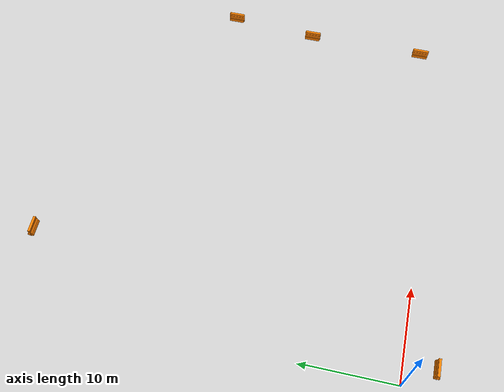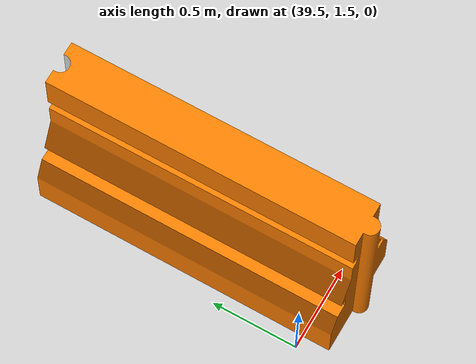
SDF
<sdf version="1.6">
 <world name="default">
  <light name="sun" type="directional">
   <pose>0 0 10 0 -0 0</pose>
   <diffuse>0.8 0.8 0.8 1</diffuse>
   <specular>0.1 0.1 0.1 1</specular>
   <attenuation>
    <range>1000</range>
    <constant>0.9</constant>
    <linear>0.01</linear>
    <quadratic>0.001</quadratic>
   </attenuation>
   <direction>-0.5 0.5 -1</direction>
  </light>
  <model name="ground_plane">
   <static>1</static>
   <link name="link">
    <collision name="collision">
     <geometry><plane><normal>0 0 1</normal><size>100 100</size></plane></geometry>
     <surface><friction><ode><mu>100</mu><mu2>50</mu2></ode></friction></surface>
    </collision>
    <visual name="visual">
     <cast_shadows>0</cast_shadows>
     <geometry><plane><normal>0 0 1</normal><size>100 100</size></plane></geometry>
     <material>
      <script><uri>file://media/materials/scripts/gazebo.material</uri><name>Gazebo/Grey</name></script>
     </material>
    </visual>
   </link>
  </model>
  <gravity>0 0 -9.8</gravity>
  <magnetic_field>6e-06 2.3e-05 -4.2e-05</magnetic_field>
  <atmosphere type="adiabatic"/>
  <physics name="default_physics" default="0" type="ode">
   <max_step_size>0.001</max_step_size>
   <real_time_factor>1</real_time_factor>
   <real_time_update_rate>1000</real_time_update_rate>
  </physics>
  <scene><ambient>0.4 0.4 0.4 1</ambient><background>0.7 0.7 0.7 1</background><shadows>1</shadows></scene>
  <spherical_coordinates>
   <surface_model>EARTH_WGS84</surface_model>
   <latitude_deg>0</latitude_deg>
   <longitude_deg>0</longitude_deg>
   <elevation>0</elevation>
   <heading_deg>0</heading_deg>
  </spherical_coordinates>
  <model name="drc_practice_organge_jersey_barrier">
   <static>1</static>
   <link name="link">
    <visual name="visual">
     <geometry>
      <mesh>
       <uri>model://drc_practice_orange_jersey_barrier/meshes/jersey_barrier.dae</uri>
       <scale>1 1 1</scale>
      </mesh>
     </geometry>
    </visual>
    <collision name="collision">
     <geometry>
      <mesh>
       <uri>model://drc_practice_orange_jersey_barrier/meshes/jersey_barrier.dae</uri>
       <scale>1 1 1</scale>
      </mesh>
     </geometry>
    </collision>
   </link>
   <pose>2.29845 -3.29603 0 0 0 -1.5708</pose>
  </model>
  <model name="drc_practice_organge_jersey_barrier_0">
   <static>1</static>
   <link name="link">
    <visual name="visual">
     <geometry>
      <mesh>
       <uri>model://drc_practice_orange_jersey_barrier/meshes/jersey_barrier.dae</uri>
       <scale>1 1 1</scale>
      </mesh>
     </geometry>
    </visual>
    <collision name="collision">
     <geometry>
      <mesh>
       <uri>model://drc_practice_orange_jersey_barrier/meshes/jersey_barrier.dae</uri>
       <scale>1 1 1</scale>
      </mesh>
     </geometry>
    </collision>
   </link>
   <pose>39.8792 2.22405 0 0 -0 0</pose>
  </model>
  <model name="drc_practice_organge_jersey_barrier_1">
   <static>1</static>
   <link name="link">
    <visual name="visual">
     <geometry>
      <mesh>
       <uri>model://drc_practice_orange_jersey_barrier/meshes/jersey_barrier.dae</uri>
       <scale>1 1 1</scale>
      </mesh>
     </geometry>
    </visual>
    <collision name="collision">
     <geometry>
      <mesh>
       <uri>model://drc_practice_orange_jersey_barrier/meshes/jersey_barrier.dae</uri>
       <scale>1 1 1</scale>
      </mesh>
     </geometry>
    </collision>
   </link>
   <pose>39.8253 15.3271 0 0 -0 0</pose>
  </model>
  <model name="drc_practice_organge_jersey_barrier_2">
   <static>1</static>
   <link name="link">
    <visual name="visual">
     <geometry>
      <mesh>
       <uri>model://drc_practice_orange_jersey_barrier/meshes/jersey_barrier.dae</uri>
       <scale>1 1 1</scale>
      </mesh>
     </geometry>
    </visual>
    <collision name="collision">
     <geometry>
      <mesh>
       <uri>model://drc_practice_orange_jersey_barrier/meshes/jersey_barrier.dae</uri>
       <scale>1 1 1</scale>
      </mesh>
     </geometry>
    </collision>
   </link>
   <pose>40.6835 24.989 0 0 -0 0</pose>
  </model>
  <model name="drc_practice_organge_jersey_barrier_3">
   <static>1</static>
   <link name="link">
    <visual name="visual">
     <geometry>
      <mesh>
       <uri>model://drc_practice_orange_jersey_barrier/meshes/jersey_barrier.dae</uri>
       <scale>1 1 1</scale>
      </mesh>
     </geometry>
    </visual>
    <collision name="collision">
     <geometry>
      <mesh>
       <uri>model://drc_practice_orange_jersey_barrier/meshes/jersey_barrier.dae</uri>
       <scale>1 1 1</scale>
      </mesh>
     </geometry>
    </collision>
   </link>
   <pose>8.10732 39.7094 0.027252 0 0 -1.5708</pose>
  </model>
 </world>
</sdf>
